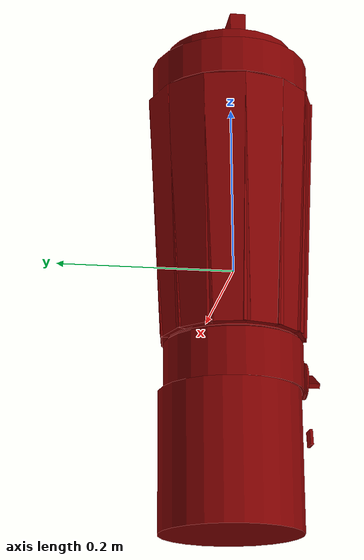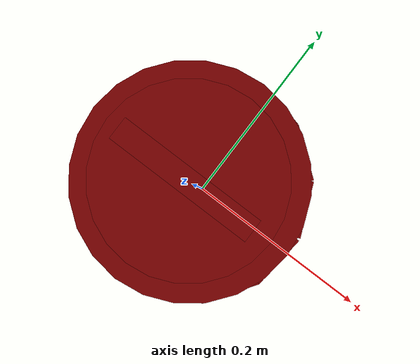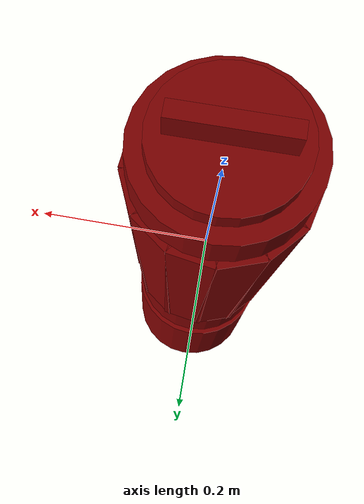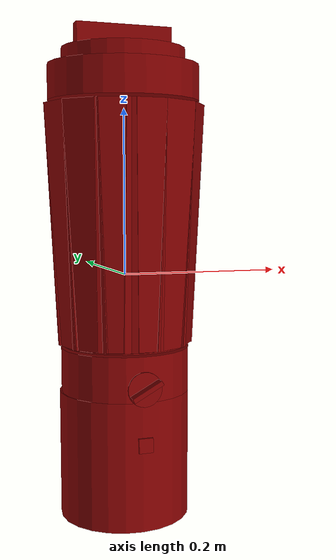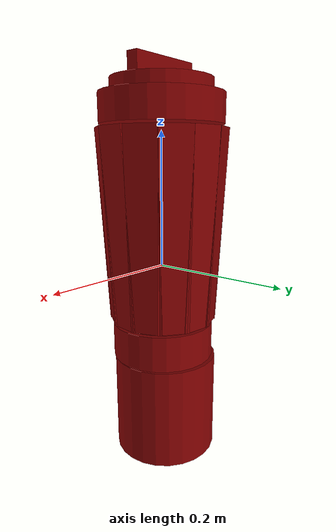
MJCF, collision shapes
<?xml version='1.0' encoding='UTF-8'?>
<mujoco model="model">
  <option timestep="0.0005" gravity="0.0 0.0 -9.81"/>
  <compiler angle="radian"/>
  <asset>
    <mesh file="visuals/Blade001.obj" name="Blade001_vis"/>
    <mesh file="visuals/Body001.obj" name="Body001_vis"/>
    <mesh file="visuals/Button001.obj" name="Button001_vis"/>
    <mesh file="visuals/Jug001.obj" name="Jug001_vis"/>
    <mesh file="visuals/Jug001_Clear.obj" name="Jug001_Clear_vis"/>
    <mesh file="visuals/Knob001.obj" name="Knob001_vis"/>
    <mesh file="visuals/Lid001.obj" name="Lid001_vis"/>
    <texture file="visuals/T_BC001.png" name="Body001_material" type="2d"/>
    <material name="Body001_material" rgba="1 1 1 1.0" texture="Body001_material" shininess="0.18054693937301636" specular="0.3103448502657381"/>
    <texture file="visuals/T_BC001.png" name="Button001_material" type="2d"/>
    <material name="Button001_material" rgba="1 1 1 1.0" texture="Button001_material" shininess="0.18054693937301636" specular="0.3103448502657381"/>
    <material name="Jug001_Clear_material" rgba="0.07069122791290283 0.07069122791290283 0.07069122791290283 0.800000011920929" shininess="0.4472135901451111" specular="0.3103448502657381"/>
    <texture file="visuals/T_BC001.png" name="Blade001_material" type="2d"/>
    <material name="Blade001_material" rgba="1 1 1 1.0" texture="Blade001_material" shininess="0.18054693937301636" specular="8"/>
    <texture file="visuals/T_BC001.png" name="Jug001_material" type="2d"/>
    <material name="Jug001_material" rgba="1 1 1 1.0" texture="Jug001_material" shininess="0.18054693937301636" specular="0.3103448502657381"/>
    <texture file="visuals/T_BC001.png" name="Knob001_material" type="2d"/>
    <material name="Knob001_material" rgba="1 1 1 1.0" texture="Knob001_material" shininess="0.18054693937301636" specular="0.3103448502657381"/>
    <texture file="visuals/T_BC001.png" name="Lid001_material" type="2d"/>
    <material name="Lid001_material" rgba="1 1 1 1.0" texture="Lid001_material" shininess="0.18054693937301636" specular="0.3103448502657381"/>
  </asset>
  <default>
    <default class="visual">
      <geom conaffinity="0" contype="0" group="1" type="mesh"/>
    </default>
    <default class="collision">
      <geom group="0" rgba="0.5 0 0 0.5"/>
    </default>
    <default class="spawn">
      <geom group="0" rgba="1 1 1 0.5" contype="0" conaffinity="0"/>
      <site group="0" rgba="1 1 1 0.5"/>
    </default>
    <default class="region">
      <geom group="1" conaffinity="0" contype="0" rgba="0 1 0 0"/>
    </default>
  </default>
  <worldbody>
    <body>
      <body name="object">
        <geom mesh="Body001_vis" type="mesh" solimp="0.998 0.998 0.001" solref="0.001 1" friction="0.95 0.3 0.1" class="visual" material="Body001_material"/>
        <geom class="collision" type="cylinder" pos="0.000031 0.001652 -0.114920" size="0.07805658876895905 0.026969674974679947" quat="1.0 0.0 0.0 0.0" density="1000.0"/>
        <geom class="collision" type="cylinder" pos="0.000031 0.006326 -0.219930" size="0.07937656342983246 0.07767137885093689" quat="1.0 0.0 0.0 0.0" density="1000.0"/>
        <body name="Button001">
          <joint axis="0.0 0.9989084601402283 -0.046709202229976654" pos="0.000003 -0.081817 -0.190531" limited="true" name="Button001_joint" range="0.0 0.002" type="slide" damping="1" frictionloss="1" armature=".01" stiffness="0.5" springref="-0.5"/>
          <geom mesh="Button001_vis" type="mesh" solimp="0.998 0.998 0.001" solref="0.001 1" friction="0.95 0.3 0.1" class="visual" material="Button001_material"/>
          <geom class="collision" type="box" pos="0.000204 -0.082742 -0.190189" size="0.00850411131978035 0.0017433171160519123 0.008499964140355587" quat="0.9996948838233948 -0.02470068261027336 0.0 0.0" density="1000.0"/>
        </body>
        <body name="Jug001_Clear">
          <geom class="region" name="reg_int" type="box" pos="9.999999999940612e-07 0.0019305000000000017 0.06066749999999999" size="0.07263700000000001 0.0729075 0.1451115"/>
          <joint axis="0.0 0.0 1.0" pos="-0.000000 0.001652 0.059871" limited="true" name="Jug001_Clear_joint" range="0.0 0.05" type="slide" damping="1" frictionloss="1" armature=".01" stiffness="0.05"/>
          <geom mesh="Jug001_Clear_vis" type="mesh" solimp="0.998 0.998 0.001" solref="0.001 1" friction="0.95 0.3 0.1" class="visual" material="Jug001_Clear_material"/>
          <geom class="collision" type="box" pos="0.000031 -0.078831 0.060588" size="0.023384518921375275 0.006012120749801397 0.1433258205652237" quat="0.9996532201766968 0.026332691311836243 5.8470150817469256e-18 1.5973589249556903e-24" density="1000.0"/>
          <geom class="collision" type="box" pos="0.037874 -0.069379 0.060588" size="0.023384520784020424 0.006012120749801397 0.1433258205652237" quat="0.9698599576950073 0.02554771862924099 0.006380901671946049 0.2422359734773636" density="1000.0"/>
          <geom class="collision" type="box" pos="0.067039 -0.042929 0.060588" size="0.023384518921375275 0.006012120749801397 0.1433258205652237" quat="0.8811467885971069 0.02321086823940277 0.012436124496161938 0.47210901975631714" density="1000.0"/>
          <geom class="collision" type="box" pos="0.080134 -0.006155 0.060588" size="0.023384517058730125 0.006012119818478823 0.1433258205652237" quat="0.7403488159179688 0.019502002745866776 0.01769385300576687 0.6717069745063782" density="1000.0"/>
          <geom class="collision" type="box" pos="0.073728 0.033998 0.060588" size="0.023384518921375275 0.00601212028414011 0.1433258205652237" quat="0.5466622710227966 0.014399973675608635 0.022046340629458427 0.8369390368461609" density="1000.0"/>
          <geom class="collision" type="box" pos="0.049181 0.065384 0.060588" size="0.023384518921375275 0.00601212028414011 0.1433258205652237" quat="0.32247495651245117 0.008494513109326363 0.024924755096435547 0.9462116360664368" density="1000.0"/>
          <geom class="collision" type="box" pos="0.013213 0.081047 0.060588" size="0.023384518921375275 0.00601212028414011 0.1433258205652237" quat="0.08213873952627182 0.0021636674646288157 0.026243526488542557 0.9962729811668396" density="1000.0"/>
          <geom class="collision" type="box" pos="-0.026720 0.077558 0.060588" size="0.023384518921375275 0.00601212028414011 0.1433258205652237" quat="0.16854876279830933 0.004439870826900005 -0.025955568999052048 -0.985341489315033" density="1000.0"/>
          <geom class="collision" type="box" pos="-0.060199 0.055034 0.060588" size="0.023384517058730125 0.00601212028414011 0.1433258205652237" quat="0.41017454862594604 0.010804674588143826 -0.024013768881559372 -0.9116268157958984" density="1000.0"/>
          <geom class="collision" type="box" pos="-0.078328 0.020016 0.060588" size="0.023384518921375275 0.00601212028414011 0.1433258205652237" quat="0.6209990978240967 0.01635812036693096 -0.020635200664401054 -0.7833688259124756" density="1000.0"/>
          <geom class="collision" type="box" pos="-0.077805 -0.018814 0.060588" size="0.023384522646665573 0.006012119818478823 0.1433258205652237" quat="0.7916476130485535 0.02085329033434391 -0.01607920043170452 -0.610410213470459" density="1000.0"/>
          <geom class="collision" type="box" pos="-0.058880 -0.053183 0.060588" size="0.023384518921375275 0.00601212028414011 0.1433258205652237" quat="0.9165601134300232 0.024143684655427933 -0.01051107794046402 -0.39902907609939575" density="1000.0"/>
          <geom class="collision" type="box" pos="-0.029500 -0.073217 0.060588" size="0.023384518921375275 0.00601212028414011 0.1433258205652237" quat="0.9820668697357178 0.02586924470961094 -0.004917584825307131 -0.18668484687805176" density="1000.0"/>
          <geom class="collision" type="cylinder" pos="0.000031 0.001652 -0.084845" size="0.07545583695173264 0.0007141885580495" quat="1.0 0.0 0.0 0.0" density="1000.0"/>
          <body name="Blade001">
            <joint axis="0.0 0.0 1.0" pos="0.000001 0.001059 -0.038185" limited="false" name="Blade001_joint" range="0 360" type="hinge" damping="1" frictionloss="1" armature=".01" stiffness="0.05"/>
            <geom mesh="Blade001_vis" type="mesh" solimp="0.998 0.998 0.001" solref="0.001 1" friction="0.95 0.3 0.1" class="visual" material="Blade001_material"/>
            <geom class="collision" type="cylinder" pos="0.000031 0.001652 -0.036134" size="0.03686840087175369 0.021862994879484177" quat="1.0 0.0 0.0 0.0" density="1000.0"/>
          </body>
          <body name="Jug001">
            <geom mesh="Jug001_vis" type="mesh" solimp="0.998 0.998 0.001" solref="0.001 1" friction="0.95 0.3 0.1" class="visual" material="Jug001_material"/>
            <geom class="collision" type="cylinder" pos="0.000031 0.001652 -0.074552" size="0.05780214071273804 0.009653287939727306" quat="1.0 0.0 0.0 0.0" density="1000.0"/>
          </body>
        </body>
        <body name="Knob001">
          <joint axis="0.0 1.0 0.0" pos="0.000793 -0.069147 -0.125704" limited="true" name="Knob001_joint" range="0.0 4.1887902047863905" type="hinge" damping="0.05" armature="0.001"/>
          <geom mesh="Knob001_vis" type="mesh" solimp="0.998 0.998 0.001" solref="0.001 1" friction="0.95 0.3 0.1" class="visual" material="Knob001_material"/>
          <geom class="collision" type="cylinder" pos="0.000843 -0.078203 -0.125682" size="0.020389603450894356 0.0012918240390717983" quat="0.7071067094802856 0.70710688829422 -1.5700929612083792e-16 2.2148514736588345e-23" density="1000.0"/>
          <geom class="collision" type="box" pos="0.000843 -0.084735 -0.125682" size="0.019798679277300835 0.006978995632380247 0.002770190592855215" quat="0.9689902663230896 -5.815854741394522e-16 -0.2470989227294922 8.45783443281789e-09" density="1000.0"/>
        </body>
        <body name="Lid001">
          <joint axis="0.0 0.0 1.0" pos="-0.000000 0.001656 0.242140" limited="true" name="Lid001_joint" range="0.0 0.05" type="slide" damping="1" frictionloss="1" armature=".01" stiffness="0.05"/>
          <geom mesh="Lid001_vis" type="mesh" solimp="0.998 0.998 0.001" solref="0.001 1" friction="0.95 0.3 0.1" class="visual" material="Lid001_material"/>
          <geom class="collision" type="cylinder" pos="0.000031 0.001652 0.228788" size="0.09070291370153427 0.021028811112046242" quat="1.0 0.0 0.0 0.0" density="1000.0"/>
          <geom class="collision" type="cylinder" pos="0.000031 0.001652 0.258450" size="0.07395417243242264 0.010420814156532288" quat="1.0 0.0 0.0 0.0" density="1000.0"/>
          <geom class="collision" type="box" pos="-0.000562 0.000909 0.281925" size="0.05814065411686897 0.008981000632047653 0.014717263169586658" quat="1.0 0.0 0.0 0.0" density="1000.0"/>
        </body>
        <geom class="region" name="reg_main" type="box" pos="4.9999999999980616e-06 0.0014790000000000011 3.149999999998987e-05" size="0.08988399999999999 0.090062 0.2966215"/>
      </body>
    </body>
  </worldbody>
  <actuator>
    <motor name="Button001_joint_actuator" joint="Button001_joint" gear="0.5"/>
    <motor name="Jug001_Clear_joint_actuator" joint="Jug001_Clear_joint" gear="200"/>
    <motor name="Knob001_joint_actuator" joint="Knob001_joint" gear="10"/>
    <motor name="Lid001_joint_actuator" joint="Lid001_joint" gear="80"/>
    <motor name="Blade001_joint_actuator" joint="Blade001_joint" gear="10"/>
  </actuator>
</mujoco>
